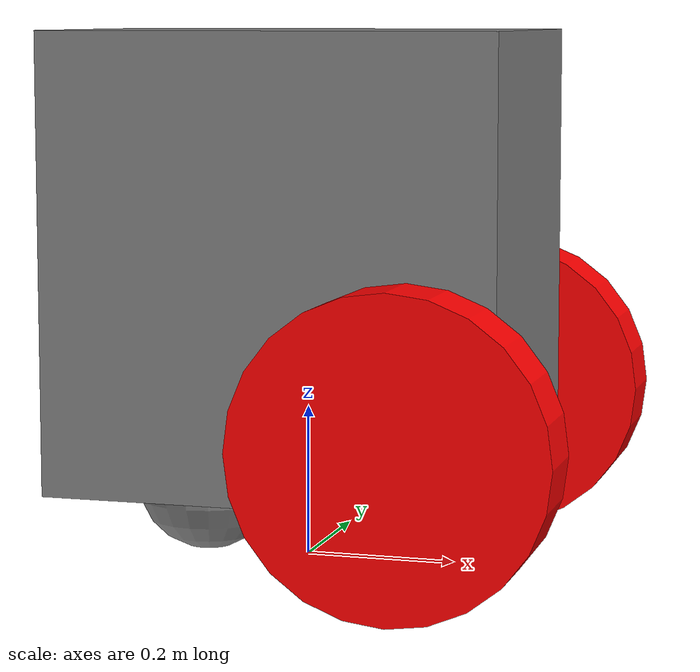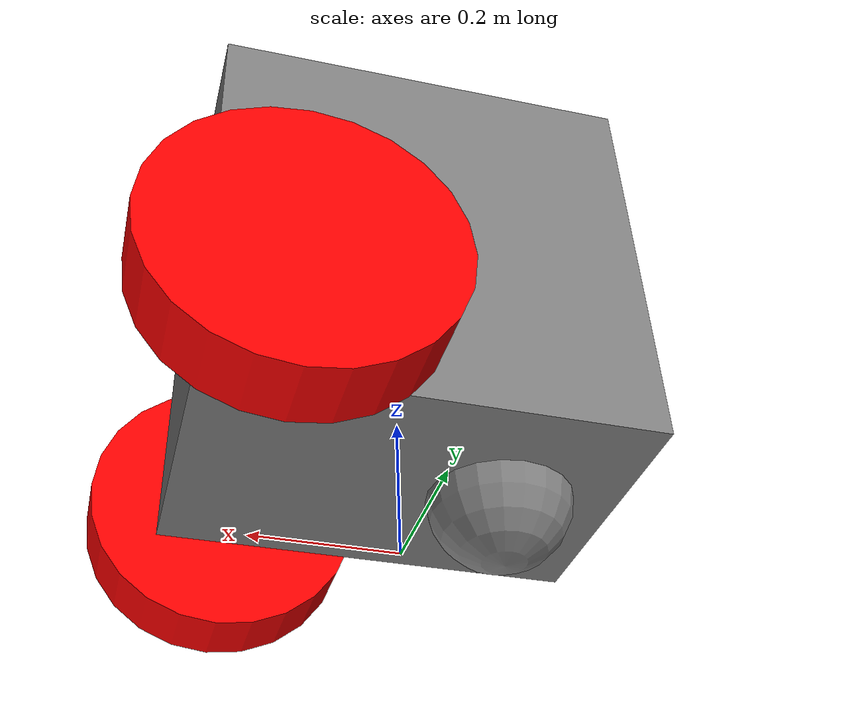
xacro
<?xml version="1.0"?>
<robot xmlns:xacro="http://www.ros.org/wiki/xacro" name="dtw_robot">
	<include filename="$(find soma_mse)/xacro/movebase_macro.xacro" />
	<!-- empty link -->
	<link name="base_link" />
	<body_macro parent="base_link" />
	<wheel_macro prefix="left_wheel" parent="base_link" xyz="0.2 0.3 0.2" />
	<wheel_macro prefix="right_wheel" parent="base_link" xyz="0.2 -0.3 0.2" />
	<gazebo>
		<plugin name="gazebo_ros_control" filename="libgazebo_ros_control.so">
			<robotNamespace>
				/dtw_robot
			</robotNamespace>
			<robotSimType>
				gazebo_ros_control/DefaultRobotHWSim
				<robotSimType>
					<legacyModeNS>
						true
					</legacyModeNS>
				</robotSimType>
			</robotSimType>
		</plugin>
	</gazebo>
</robot>

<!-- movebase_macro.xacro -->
<robot xmlns:xacro="http://www.ros.org/wiki/xacro" name="dtw_robot">
	<material name="gray">
		<color rgba="0.5 0.5 0.5 2.5" />
	</material>
	<material name="red">
		<color rgba="1.0 0.0 0.0 2.5" />
	</material>
	<macro name="wheel_macro" params="parent prefix xyz">
		<joint name="${prefix}_joint" type="continuous">
			<origin xyz="${xyz}" rpy="${radians(-90)} 0.0 0.0" />
			<parent link="${parent}" />
			<child link="${prefix}_link" />
			<axis xyz="0 0 1" />
			<limit velocity="12.0" effort="0.4" />
			<dynamics damping="0.1" />
		</joint>
		<transmission name="${prefix}_trans">
			<type>
				transmission_interface/SimpleTransmission
			</type>
			<joint name="${prefix}_joint">
				<hardwareInterface>
					hardware_interface/VelocityJointInterface
				</hardwareInterface>
			</joint>
			<actuator name="${prefix}_motor">
				<hardwareInterface>
					hardware_interface/VelocityJointInterface
				</hardwareInterface>
				<mechanismReduction>
					1
				</mechanismReduction>
			</actuator>
		</transmission>
		<link name="${prefix}_link">
			<inertial>
				<origin xyz="0.0 0.0 0.0" rpy="0.0 0.0 0.0" />
				<mass value="0.5" />
				<inertia ixx="0.0001" ixy="0.0" ixz="0.0" iyy="0.0001" iyz="0.0" izz="0.0001" />
			</inertial>
			<visual>
				<geometry>
					<cylinder radius="0.2" length="0.1" />
				</geometry>
				<material name="red" />
			</visual>
			<collision>
				<geometry>
					<cylinder radius="0.2" length="0.1" />
				</geometry>
			</collision>
		</link>
		<gazebo reference="${prefix}_link">
			<material>
				Gazebo/Red
			</material>
			<mu1 value="2.5" />
			<mu2 value="2.5" />
			<kp value="50000" />
			<kd value="10" />
		</gazebo>
	</macro>
	<macro name="body_macro" params="parent">
		<joint name="body_joint" type="fixed">
			<parent link="${parent}" />
			<child link="body_link" />
			<origin xyz="0 0 0.4" rpy="0.0 0.0 0.0" />
		</joint>
		<link name="body_link">
			<inertial>
				<origin xyz="0.0 0.0 0.0" rpy="0.0 0.0 0.0" />
				<mass value="1.0" />
				<inertia ixx="0.001" ixy="0.0" ixz="0.0" iyy="0.001" iyz="0.0" izz="0.001" />
			</inertial>
			<visual>
				<origin xyz="0.0 0.0 0.0" rpy="0.0 0.0 0.0" />
				<geometry>
					<box size="0.6 0.40 0.6" />
				</geometry>
				<material name="gray" />
			</visual>
			<collision>
				<origin xyz="0.0 0.0 0.0" rpy="0.0 0.0 0.0" />
				<geometry>
					<box size="0.6 0.40 0.6" />
				</geometry>
			</collision>
		</link>
		<gazebo reference="body_link">
			<material>
				Gazebo/Gray
			</material>
		</gazebo>
		<joint name="ball_joint" type="fixed">
			<parent link="${parent}" />
			<child link="ball_link" />
			<origin xyz="-0.14 0 0.1" rpy="0.0 0.0 0.0" />
		</joint>
		<link name="ball_link">
			<visual>
				<origin xyz="0.0 0.0 0.0" rpy="0.0 0.0 0.0" />
				<geometry>
					<sphere radius="0.1" />
				</geometry>
				<material name="gray" />
			</visual>
			<collision>
				<origin xyz="0.0 0.0 0.0" rpy="0.0 0.0 0.0" />
				<geometry>
					<sphere radius="0.1" />
				</geometry>
				<material name="gray" />
			</collision>
		</link>
		<gazebo reference="ball_link">
			<material>
				Gazebo/Gray
			</material>
			<mu1 value="0.5" />
			<mu2 value="0.5" />
		</gazebo>
	</macro>
</robot>
